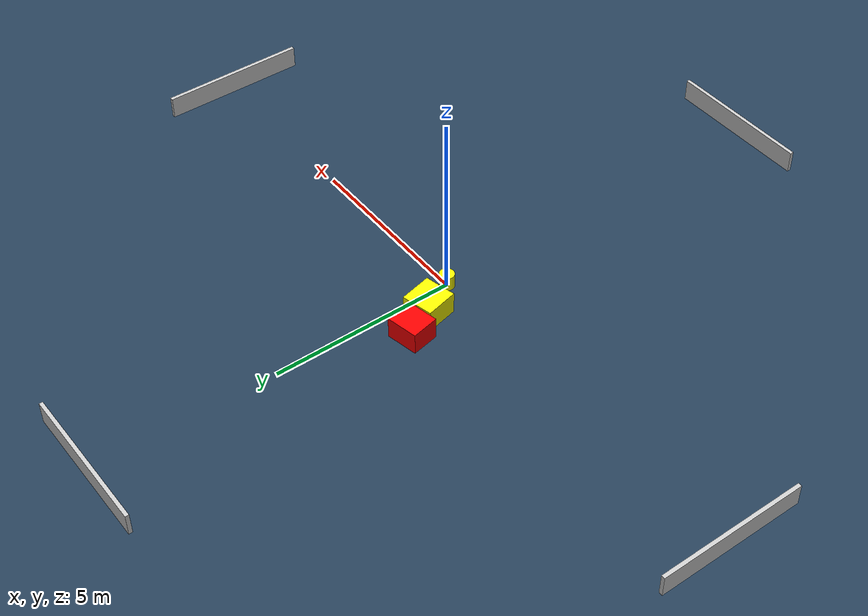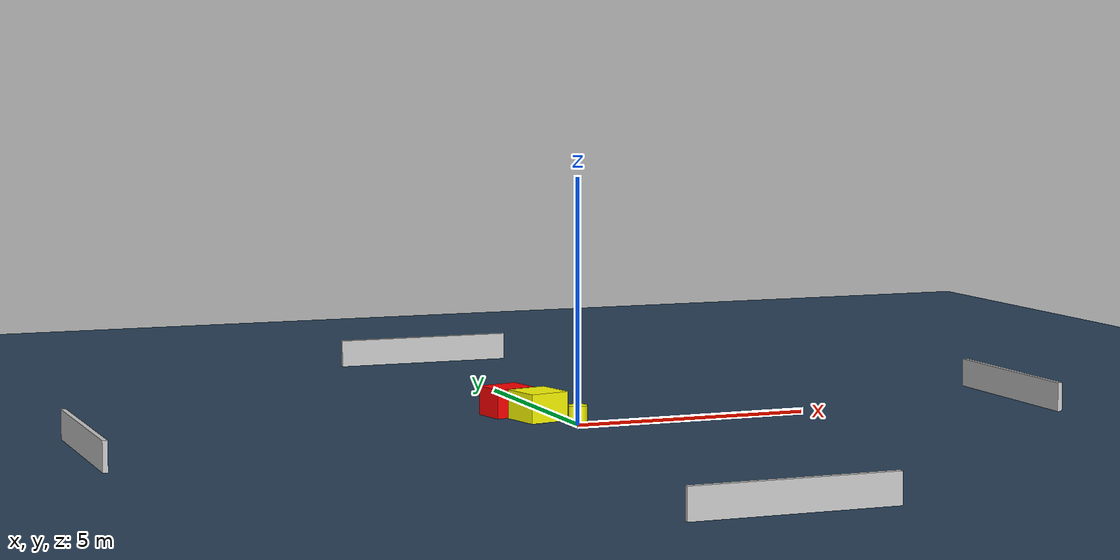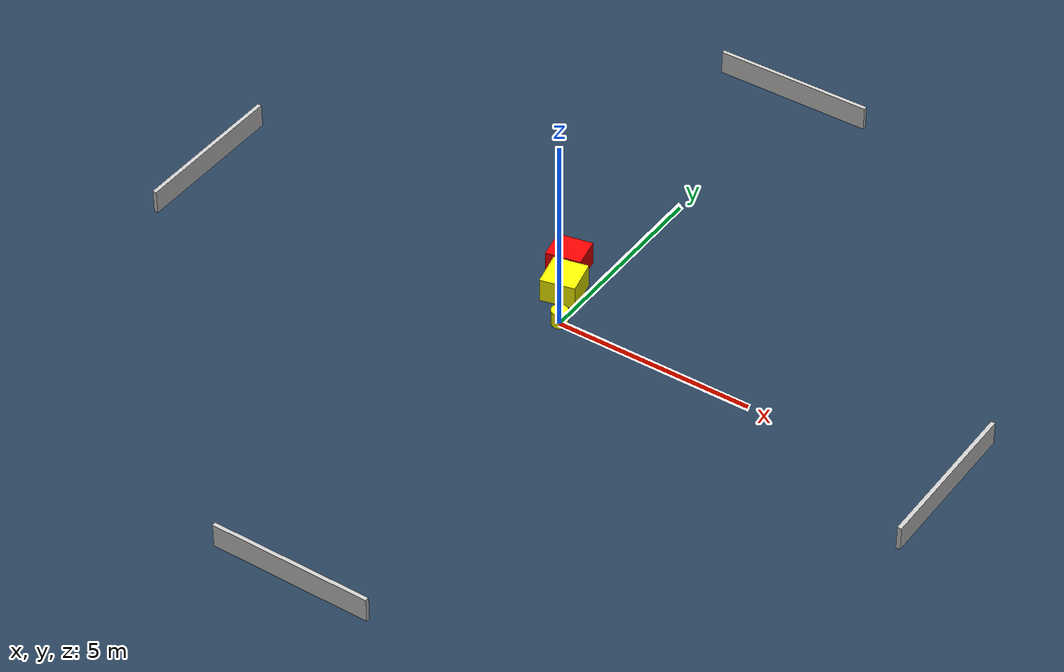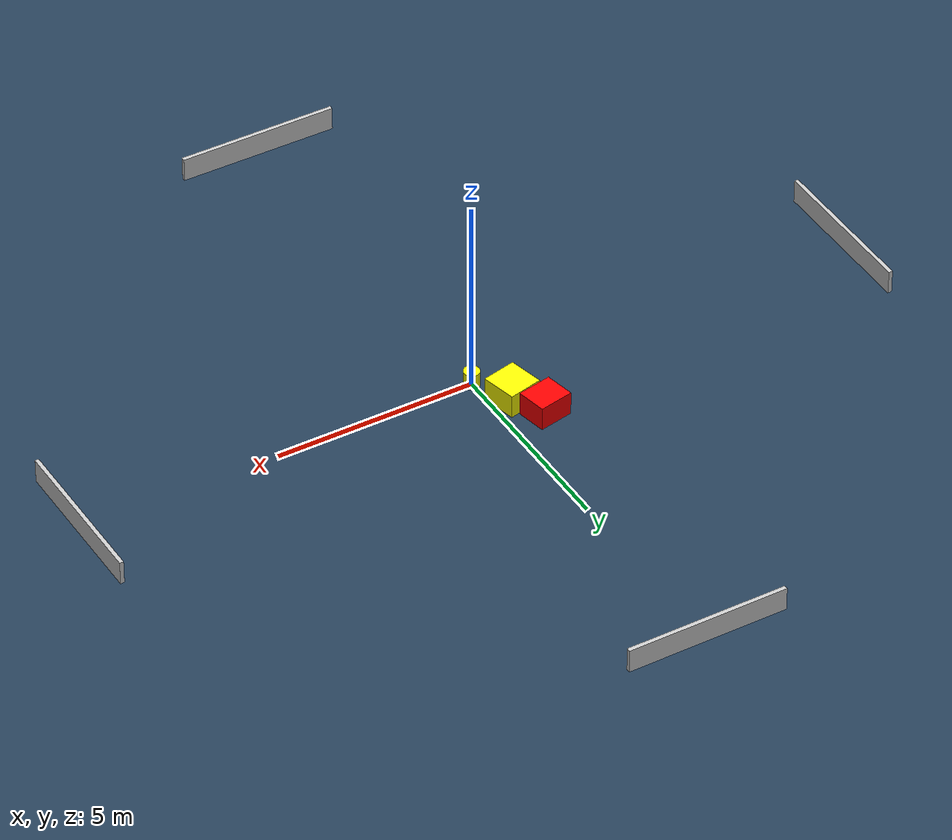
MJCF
<?xml version="1.0" ?>
<mujoco model="generated_environment">
  <option timestep="0.01" integrator="RK4" cone="elliptic"/>
  <default>
    <geom density="1"/>
  </default>
  <asset>
    <texture builtin="gradient" height="3072" name="skybox" rgb1="0.3 0.5 0.7" rgb2="0 0 0" type="skybox" width="512"/>
    <texture builtin="checker" height="300" name="groundplane" rgb1="0.2 0.3 0.4" rgb2="0.1 0.2 0.3" type="2d" width="300"/>
    <material name="groundplane" reflectance="0.2" texrepeat="5 5" texture="groundplane"/>
  </asset>
  <worldbody>
    <light dir="0 0 -1" directional="true" pos="0 0 1.5"/>
    <geom condim="3" friction="0.5 0.005 0.001" material="groundplane" name="floor" pos="0 0 0" size="0 0 0.05" type="plane"/>
    <body name="walls">
      <geom name="wall_1" condim="4" pos="-10.0 0.0 0.3" rgba="0.800000011920929 0.800000011920929 0.800000011920929 1.0" size="0.05 2.0 0.3" type="box"/>
      <geom name="wall_2" condim="4" pos="10.0 0.0 0.3" rgba="0.800000011920929 0.800000011920929 0.800000011920929 1.0" size="0.05 2.0 0.3" type="box"/>
      <geom name="wall_3" condim="4" pos="0.0 -10.0 0.3" rgba="0.800000011920929 0.800000011920929 0.800000011920929 1.0" size="2.0 0.05 0.3" type="box"/>
      <geom name="wall_4" condim="4" pos="0.0 10.0 0.3" rgba="0.800000011920929 0.800000011920929 0.800000011920929 1.0" size="2.0 0.05 0.3" type="box"/>
    </body>
    <body name="robot">
      <joint name="joint_x" type="slide" pos="0 0 0" axis="1 0 0"/>
      <joint name="joint_y" type="slide" pos="0 0 0" axis="0 1 0"/>
      <geom name="robot" type="cylinder" pos="0.0 0.0 0.2" size="0.2 0.2 0.0" mass="5.0" friction="1.0 0.005 0.0001" condim="4" rgba="1.0 1.0 0.0 1.0"/>
    </body>
    <body name="obstacle_1_movable">
      <geom name="obstacle_1_movable" condim="4" pos="-0.5082665332266565 0.9361179603023024 0.3" euler="0 0 102.82693932513138" friction="0.0 0.005 0.001" rgba="1.0 1.0 0.0 1.0" size="0.4429230803689853 0.43038959732253873 0.3" type="box" mass="0.1"/>
      <joint type="free"/>
    </body>
    <body name="obstacle_2_static">
      <geom name="obstacle_2_static" condim="4" pos="-0.9057378302199002 1.7239753580136434 0.3" euler="0 0 11.326711121039232" friction="0.0 0.005 0.001" rgba="1.0 0.0 0.0 1.0" size="0.4355472040701197 0.3749080860540156 0.3" type="box"/>
    </body>
  </worldbody>
  <actuator>
    <motor name="actuator_x" joint="joint_x" gear="1" ctrlrange="-1 1"/>
    <motor name="actuator_y" joint="joint_y" gear="1" ctrlrange="-1 1"/>
  </actuator>
</mujoco>
